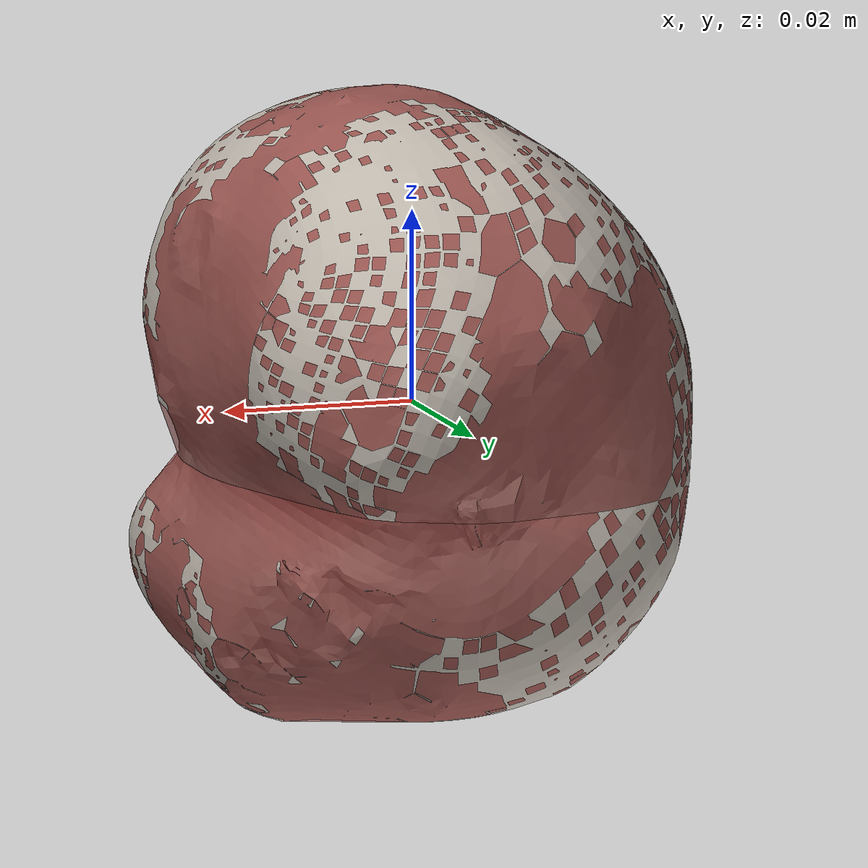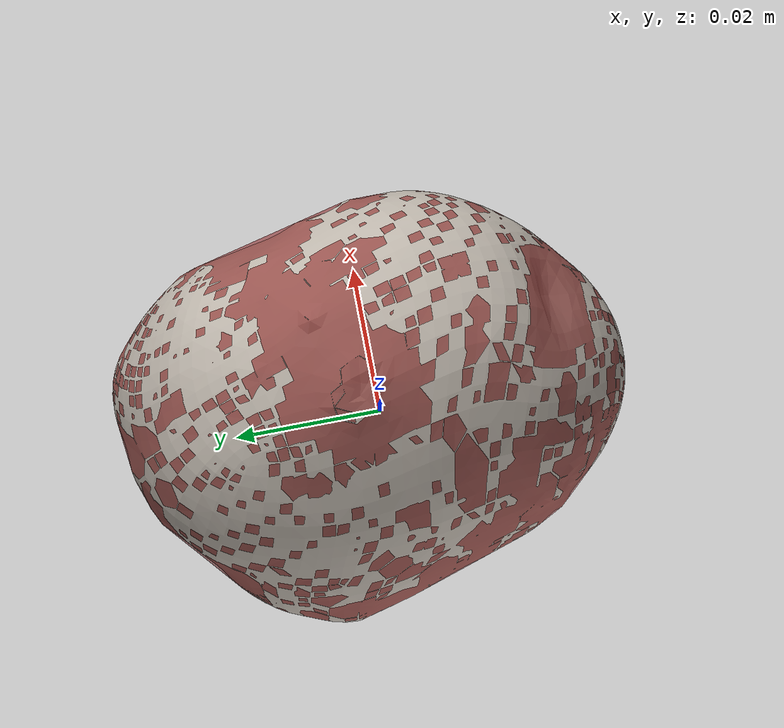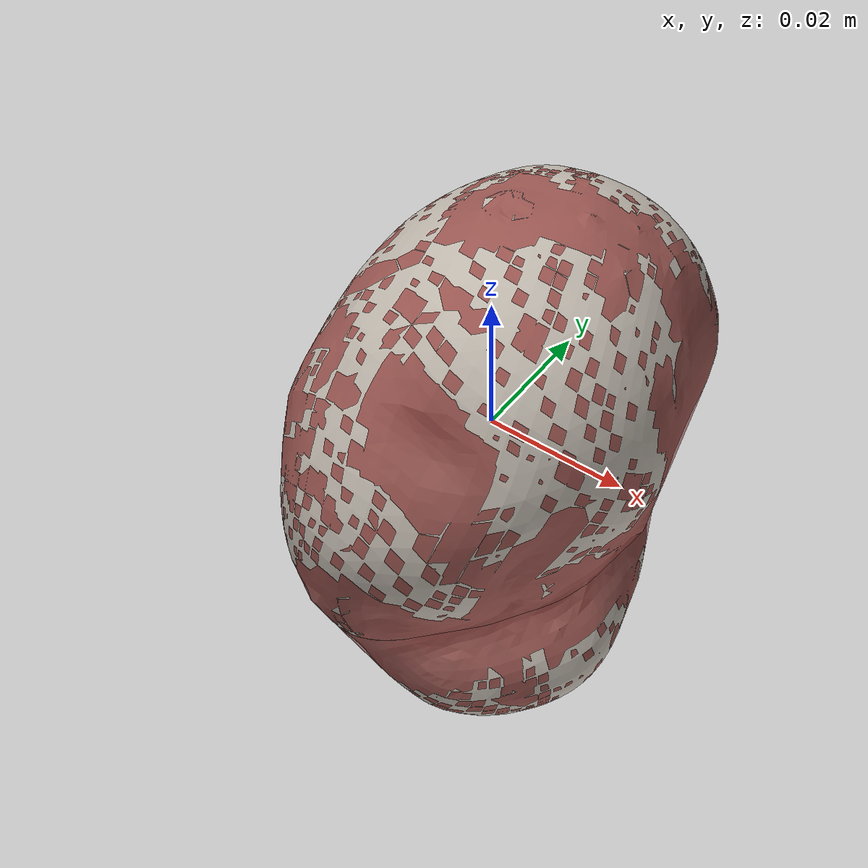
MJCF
<mujoco model="potato_4">
  <asset>
    <mesh file="visual/model_normalized_0.obj" name="model_normalized_0_vis" scale="0.067999999999999963 0.067999999999999963 0.067999999999999963" refquat="-7.850462293418875e-17 0.7071067811865475 0.7071067811865476 -7.850462293418876e-17" />
    <texture type="2d" name="image0" file="visual/image0.png" />
    <material name="default" texture="image0" specular="0.5" shininess="0.25" />
    <mesh file="collision/collision_mesh_collision_0.obj" name="potato_collision_mesh_0" scale="0.067999999999999963 0.067999999999999963 0.067999999999999963" refquat="-7.850462293418875e-17 0.7071067811865475 0.7071067811865476 -7.850462293418876e-17" />
    <mesh file="collision/collision_mesh_collision_1.obj" name="potato_collision_mesh_1" scale="0.067999999999999963 0.067999999999999963 0.067999999999999963" refquat="-7.850462293418875e-17 0.7071067811865475 0.7071067811865476 -7.850462293418876e-17" />
  </asset>
  <default>
    <default class="region">
      <geom group="1" conaffinity="0" contype="0" rgba="0 1 0 0" />
    </default>
    <default class="collision">
      <geom group="0" rgba="0.5 0 0 0.5" density="1000.0" />
    </default>
  </default>
  <worldbody>
    <body>
      <body name="object">
        <geom solimp="0.998 0.998 0.001" solref="0.001 1" density="100" friction="0.95 0.3 0.1" type="mesh" mesh="model_normalized_0_vis" conaffinity="0" contype="0" group="1" material="default" />
        <geom class="region" name="reg_bbox" type="box" pos="-1.0199999994631163e-09 0 0" size="0.026884689099999987 0.033999999999999982 0.033168547679999986" />
        <geom mesh="potato_collision_mesh_0" type="mesh" class="collision" />
        <geom mesh="potato_collision_mesh_1" type="mesh" class="collision" />
      </body>
    <site name="bottom_site" pos="0 0 -0.033168548065125064" size="0.005" rgba="0 0 0 0" /><site name="top_site" pos="0 0 0.033168548384812556" size="0.005" rgba="0 0 0 0" /><site name="horizontal_radius_site" pos="0.035042034772852629 0 0" size="0.005" rgba="0 0 0 0" /></body>
  </worldbody>
</mujoco>
